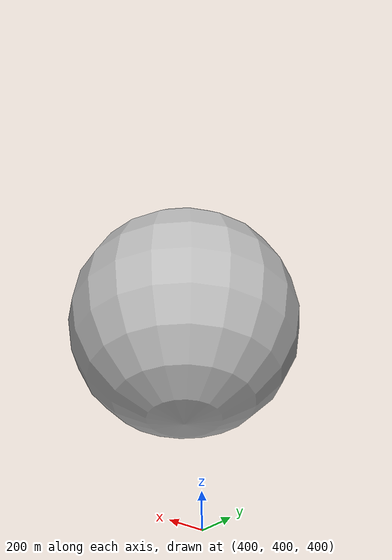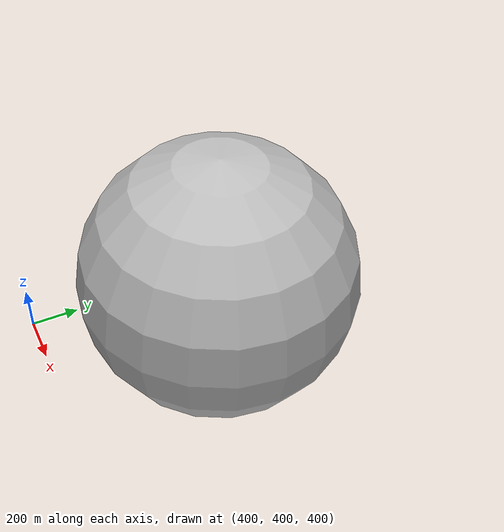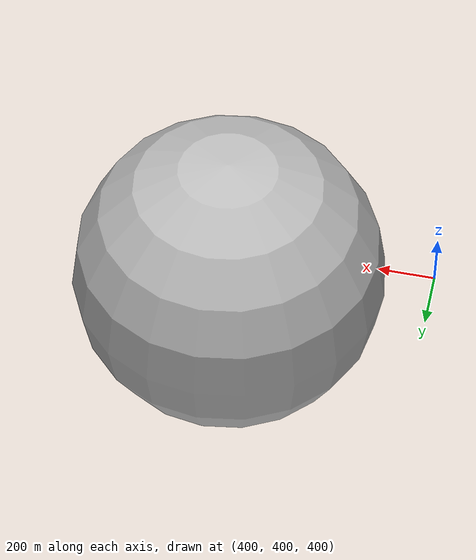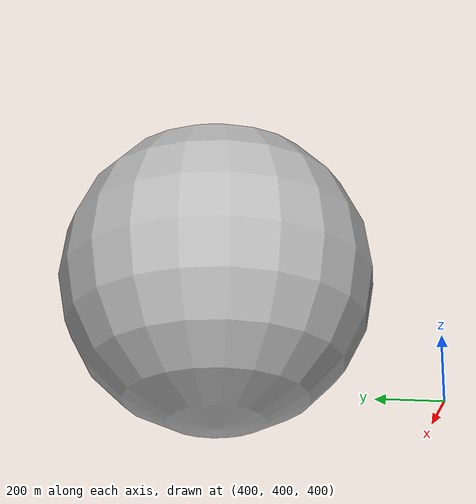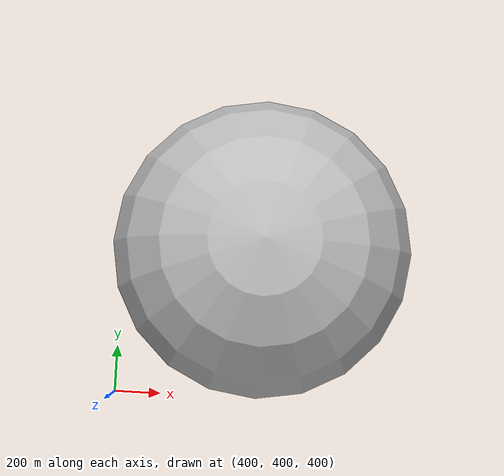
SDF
<?xml version='1.0'?>
<sdf version="1.6">
  <model name="my_cloud">
    <pose>1000 1000 1000 0 0 0</pose>
    <static>true</static>
    <link name="link">
      <visual name="visual">
        <geometry>
          <sphere>
            <radius>500</radius>
          </sphere>
        </geometry>
      </visual>
    </link>

  </model>
</sdf>
